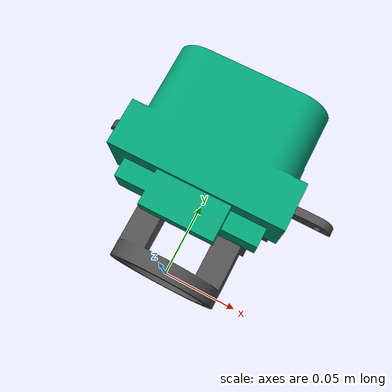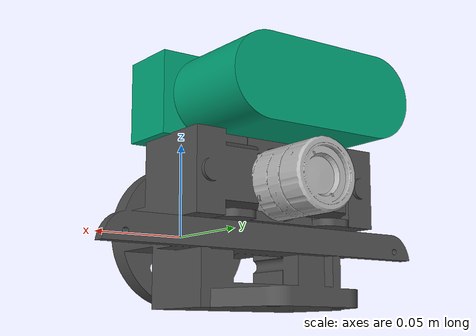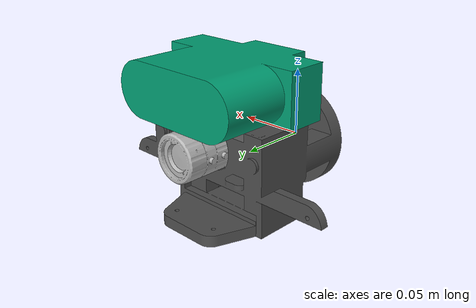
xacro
<?xml version="1.0"?>
<robot name="multi_camera_rig" xmlns:xacro="http://ros.org/wiki/xacro">

    <!-- Include macro files -->
    <xacro:include filename="$(find multi_camera_rig_description)/urdf/multi_camera_rig_macro.urdf.xacro" />

    <xacro:multi_camera_rig/>

</robot>

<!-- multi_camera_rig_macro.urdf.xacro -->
<robot xmlns:xacro="http://wiki.ros.org/xacro">

    <!-- Macro Definition -->
    <xacro:macro name="multi_camera_rig" params="use_gazebo:=true">

        <!-- Mounting frame for robot end effector-->
        <link name="multi_camera_rig_mount"/>
        <joint name="multi_camera_rig_mounting_joint" type="fixed">
            <parent link="multi_camera_rig_mount"/>
            <child link="multi_camera_rig_link"/>
            <origin xyz="0.0 0.05000000 0.01638454" rpy="0 0 0"/>
        </joint>

        <!-- Multi-camera rig body -->
        <link name="multi_camera_rig_link">
            <visual>
                <origin xyz="0 0 0" rpy="0 0 0"/>
                <geometry>
                    <mesh filename="package://multi_camera_rig_description/meshes/Multi_Camera_Rig.dae" scale="1 1 1"/>
                </geometry>
            </visual>
            <collision>
                <origin xyz="0 0 0" rpy="0 0 0"/>
                <geometry>
                    <mesh filename="package://multi_camera_rig_description/meshes/Multi_Camera_Rig_Collision.stl" scale="1 1 1"/>
                </geometry>
            </collision>
            <inertial>
                <origin xyz="0.0 0.0069039 -0.01744555" rpy="0 0 0"/>
                <mass value="0.38371071"/>
                <inertia
                    ixx="0.00044186" ixy="0.0" ixz="0.0"
                    iyy="0.0005273" iyz="0.0000071"
                    izz="0.00060226"/>
            </inertial>
        </link>

        <!-- Firefly Camera -->
        <xacro:include filename="$(find firefly-ros2-wrapper-description)/urdf/firefly_stereo_macro.urdf.xacro"/>
        <xacro:firefly_camera use_gazebo="${use_gazebo}" namespace="firefly"/>
        <joint name="firefly_camera_mount_joint" type="fixed">
            <parent link="multi_camera_rig_link"/>
            <child link="firefly_camera_link"/>
            <origin xyz="0.0 -0.00700141 0.03886253" rpy="0 0 0"/>
        </joint>

        <!-- Ximea Camera -->
        <xacro:include filename="$(find ximea-ros2-wrapper-description)/urdf/ximea_macro.urdf.xacro"/>
        <xacro:ximea_camera/>
        <joint name="ximea_camera_mount_joint" type="fixed">
            <parent link="multi_camera_rig_link"/>
            <child link="ximea_camera_link"/>
            <origin xyz="0.0 0.03150000 0.0" rpy="0 0 0"/>
        </joint>

        <!-- ZED Camera -->
    </xacro:macro>
</robot>

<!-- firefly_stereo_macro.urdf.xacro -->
<robot xmlns:xacro="http://ros.org/wiki/xacro">

    <!-- Include Gazebo sensor plugins -->
    <xacro:include filename="$(find firefly-ros2-wrapper-description)/urdf/firefly_stereo_gazebo.urdf.xacro"/>

    <!-- Macro Definition -->
    <xacro:macro name="firefly_camera" params="use_gazebo:=true namespace:=firefly">

        <!-- Link: camera body -->
        <link name="firefly_camera_link">
            <visual>
                <origin xyz="0 0 0" rpy="0 0 0"/>
                <geometry>
                    <mesh filename="file://$(find firefly-ros2-wrapper-description)/meshes/firefly-stereo.dae" scale="1 1 1"/>
                </geometry>
            </visual>
            <collision>
                <origin xyz="0 0 0" rpy="0 0 0"/>
                <geometry>
                    <mesh filename="file://$(find firefly-ros2-wrapper-description)/meshes/firefly-stereo-collision.stl" scale="1 1 1"/>
                </geometry>
            </collision>
            <inertial>
                <origin xyz="0.00001494 0.0362555 -0.00070193" rpy="0 0 0"/>
                <mass value="0.30544125"/>
                <inertia
                    ixx="0.00024164" ixy="2.330e-7" ixz="2.693e-8"
                    iyy="0.00031388" iyz="-0.00000304"
                    izz="0.00049141"/>
            </inertial>
        </link>

        <!-- Right camera and optical frames -->
        <link name="firefly_right_camera_frame"/>
        <joint name="firefly_right_camera_joint" type="fixed">
            <parent link="firefly_camera_link"/>
            <child link="firefly_right_camera_frame"/>
            <origin xyz="0.02999871 0.07322070 0.00006055" rpy="0 0 ${pi/2}"/>
        </joint>

        <link name="firefly_right_camera_optical_frame"/>
        <joint name="firefly_right_camera_optical_joint" type="fixed">
            <parent link="firefly_right_camera_frame"/>
            <child link="firefly_right_camera_optical_frame"/>
            <origin xyz="0 0 0" rpy="-${pi/2} 0 -${pi/2}"/>
        </joint>

        <!-- Left camera and optical frames -->
        <link name="firefly_left_camera_frame"/>
        <joint name="firefly_left_camera_joint" type="fixed">
            <parent link="firefly_camera_link"/>
            <child link="firefly_left_camera_frame"/>
            <origin xyz="-0.02999871 0.07322070 0.00006055" rpy="0 0 ${pi/2}"/>
        </joint>

        <link name="firefly_left_camera_optical_frame"/>
        <joint name="firefly_left_camera_optical_joint" type="fixed">
            <parent link="firefly_left_camera_frame"/>
            <child link="firefly_left_camera_optical_frame"/>
            <origin xyz="0 0 0" rpy="-${pi/2} 0 -${pi/2}"/>
        </joint>

        <!-- Add Gazebo sensor plugins if in simulation -->
        <xacro:if value="${use_gazebo}">
            <xacro:firefly_camera_gazebo namespace="${namespace}"/>
        </xacro:if>

    </xacro:macro>
</robot>

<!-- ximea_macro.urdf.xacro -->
<robot xmlns:xacro="http://ros.org/wiki/xacro">

    <!-- Macro Definition -->
    <xacro:macro name="ximea_camera">

        <!-- Main Camera Link -->
        <link name="ximea_camera_link">
            <visual>
                <origin xyz="0 0 0" rpy="0 0 0"/>
                <geometry>
                    <mesh filename="file://$(find ximea-ros2-wrapper-description)/meshes/Ximea_Camera_EO_Lens.dae" scale="1 1 1"/>
                </geometry>
            </visual>
            <collision>
                <origin xyz="0 0 0" rpy="0 0 0"/>
                <geometry>
                    <mesh filename="file://$(find ximea-ros2-wrapper-description)/meshes/Ximea_Camera_EO_Lens_Collision.stl" scale="1 1 1"/>
                </geometry>
            </collision>
            <inertial>
                <origin xyz="-0.000287 0.037072 -0.000409" rpy="0 0 0"/>
                <mass value="0.1058"/>
                <inertia
                    ixx="0.044674521" ixy="0.000036558" ixz="-0.000004585"
                    iyy="0.014954144" iyz="0.00001958"
                    izz="0.044653232"/>
            </inertial>
        </link>

        <!-- Optical Frame -->
        <link name="ximea_camera_optical_frame"/>
        <joint name="ximea_camera_optical_joint" type="fixed">
            <parent link="ximea_camera_link"/>
            <child link="ximea_camera_optical_frame"/>
            <origin xyz="0 0.03194577 0" rpy="${-pi/2} 0 0"/>
        </joint>

    </xacro:macro>
</robot>
